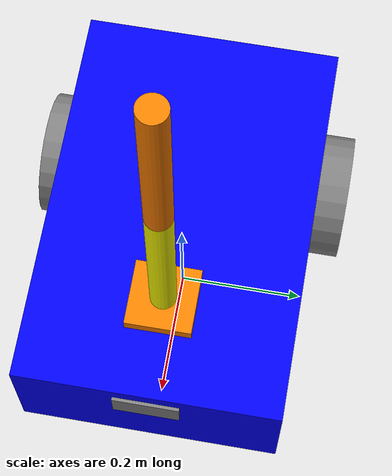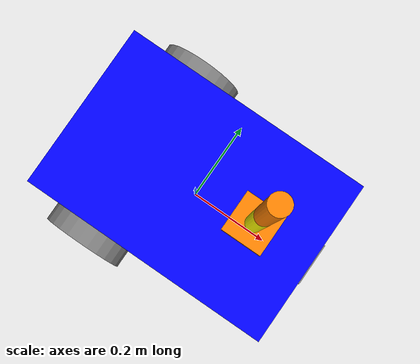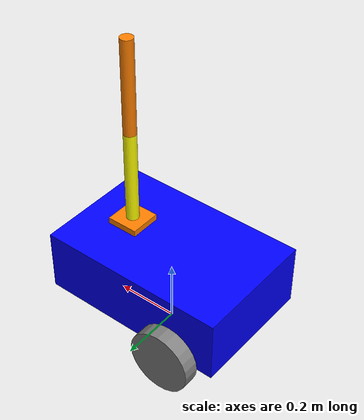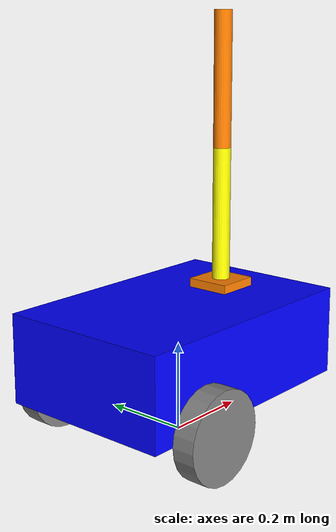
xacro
<?xml version="1.0"?>
<robot name="my_robot" xmlns:xacro="http://www.ros.org/wiki/xacro">

    <xacro:include filename="common_properties.xacro" />
    <xacro:include filename="mobile_base.xacro" />
    <xacro:include filename="mobile_base_gazebo.xacro" />
    <xacro:include filename="arm.xacro" />
    <xacro:include filename="arm_gazebo.xacro" />
    <xacro:include filename="camera.xacro" />

    <joint name="mobile_base_arm_joint" type="fixed">
    <parent link="base_link"/>
    <child link="arm_base_link"/>
    <origin xyz="${base_length/4} 0 ${base_hight}" rpy="0 0 0" />
    </joint>

</robot>

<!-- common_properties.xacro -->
<robot xmlns:xacro="http://www.ros.org/wiki/xacro">

    <material name="blue">
        <color rgba="0 0 1 1" />
    </material>

    <material name="grey">
        <color rgba="0.5 0.5 0.5 1" />
    </material>

    <material name="orange">
        <color rgba="1.0 0.5 0 1" />
    </material>

    <material name="yellow">
        <color rgba="1.0 1.0 0 1" />
    </material>

    <xacro:macro name="box_inertia" params ="m l w h xyz rpy">
        <inertial>
                <origin xyz= "${xyz}" rpy="${rpy}" />
                <mass value="${m}" />
                <inertia ixx="${(m/12)*(h*h+l*l)}" ixy="0" ixz="0"
                         iyy ="${(m/12) * (w*w + l*l)}" iyz="0"
                         izz="${(m/12) * (w*w + h*h)}" />
        </inertial>

    </xacro:macro>

    <xacro:macro name="cylinder_inertia" params ="m r h xyz rpy">
        <inertial>
                <origin xyz= "${xyz}" rpy="${rpy}" />
                <mass value="${m}" />
                <inertia ixx="${(m/12) * (3*r*r + h*h)}" ixy="0" ixz="0"
                         iyy ="${(m/12) * (3*r*r + h*h)}" iyz="0"
                         izz="${(m/2) * (r*r)}" />
        </inertial>
    </xacro:macro>

        <xacro:macro name="sphere_inertia" params ="m r xyz rpy">
        <inertial>
                <origin xyz= "${xyz}" rpy="${rpy}" />
                <mass value="${m}" />
                <inertia ixx="${(2/5)*m * (r*r)}" ixy="0" ixz="0"
                         iyy ="${(2/5)*m * (r*r)}" iyz="0"
                         izz="${(2/3)*m * (r*r)}" />
        </inertial>
    </xacro:macro>

</robot>

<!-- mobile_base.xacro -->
<robot xmlns:xacro="http://www.ros.org/wiki/xacro">

    <xacro:property name="base_length" value="0.6" />
    <xacro:property name="base_width" value="0.4" />
    <xacro:property name="base_hight" value="0.2" />
    <xacro:property name="wheel_radius" value="0.1" />
    <xacro:property name="wheel_length" value="0.05" />

    <link name="base_link">
        <visual>
            <geometry>
                <box size="${base_length} ${base_width} ${base_hight}"/>
            </geometry>
            <origin xyz="0 0 0.1" rpy="0 0 0"/>
            <material name="blue" />
        </visual>
        <collision>
            <geometry>
                <box size="${base_length} ${base_width} ${base_hight}"/>
            </geometry>
            <origin xyz="0 0 0.1" rpy="0 0 0"/>
        </collision>
        <xacro:box_inertia m="5.0" l="${base_length*2}" w="${base_width*2}" h="${base_hight*2}"
                           xyz="0 0 0.1" rpy="0 0 0" />
    </link>

    <link name="base_footprint"/>

    <link name="caster_wheel_link">
        <visual>
            <geometry>
                <sphere radius="0.05"/>
            </geometry>
        <origin xyz="0 0 0 " rpy="0 0 0"/>
        <material name="grey"/>
        </visual>
        <collision>
            <geometry>
                <sphere radius="0.05"/>
            </geometry>
        <origin xyz="0 0 0 " rpy="0 0 0"/>
        </collision>
        <xacro:sphere_inertia m="1.0" r="0.05" xyz="0 0 0" rpy="0 0 0" />
    </link>

    <xacro:macro name="wheel_link" params="prefix">
        <link name="${prefix}_wheel_link">
            <visual>
                <geometry>
                    <cylinder radius = "${wheel_radius}" length="${wheel_length}"/>
                </geometry>
                <origin xyz="0 0 0" rpy="${pi/2.0} 0 0" />
                <material name ="grey" />
            </visual>
            <collision>
                <geometry>
                    <cylinder radius = "${wheel_radius}" length="${wheel_length}"/>
                </geometry>
                <origin xyz="0 0 0" rpy="${pi/2.0} 0 0" />
            </collision>
            <xacro:cylinder_inertia m="1.0" r="${wheel_radius*2}" h="${wheel_length*2}"
                                    xyz="0 0 0" rpy="${pi/2.0} 0 0" />
        </link>
    </xacro:macro>

    <xacro:wheel_link prefix="right" />
    <xacro:wheel_link prefix="left" />

    <joint name="base_caster_wheel_joint" type="continuous">
        <parent link="base_link"/>
        <child link="caster_wheel_link"/>
        <origin xyz="${base_length/3.0} 0 -0.05" rpy="0 0 0"/>
        <axis xyz="0 1 0" />
    </joint>

    <joint name="base_right_wheel_joint" type="continuous">
        <parent link="base_link"/>
        <child link="right_wheel_link"/>
        <origin xyz="${-base_length/4} ${-base_width/2 - wheel_length/2} 0" rpy="0 0 0"/>
        <axis xyz="0 1 0"/>
    </joint>

    <joint name="base_left_wheel_joint" type="continuous">
        <parent link="base_link"/>
        <child link="left_wheel_link"/>
        <origin xyz="${-base_length/4} ${base_width/2 + wheel_length/2} 0" rpy="0 0 0"/>
        <axis xyz="0 1 0"/>
    </joint>

    <joint name="footprint_base_joint" type="fixed">
    <parent link="base_footprint"/>
    <child link="base_link"/>
    <origin xyz="0 0 0.1"/>
    </joint>

</robot>

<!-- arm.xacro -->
<robot xmlns:xacro="http://www.ros.org/wiki/xacro">

    <xacro:property name="arm_base_length" value="0.1" />
    <xacro:property name="arm_base_width" value="0.1" />
    <xacro:property name="arm_base_height" value="0.02" />
    <xacro:property name="forearm_radius" value="0.02" />
    <xacro:property name="forearm_length" value="0.3" />
    <xacro:property name="hand_radius" value="0.02" />

    <link name="arm_base_link">
        <visual>
            <geometry>
                <box size="${arm_base_length} ${arm_base_width} ${arm_base_height}" />
            </geometry>
            <origin xyz="0 0 ${arm_base_height/2}" rpy="0 0 0"/>
            <material name="orange" />
        </visual>
        <collision>
            <geometry>
                <box size="${arm_base_length} ${arm_base_width} ${arm_base_height}" />
            </geometry>
            <origin xyz="0 0 ${arm_base_height/2}" rpy="0 0 0"/>
        </collision>
        <xacro:box_inertia m="0.5" l="${2*arm_base_length}" w="${2*arm_base_width}" h="${2*arm_base_height}"
                            xyz="0 0 ${arm_base_height/2}" rpy="0 0 0" />
    </link>

    <link name="forearm_link">
        <visual>
            <geometry>
                <cylinder radius="${forearm_radius}" length="${forearm_length}"/>
            </geometry>
            <origin xyz="0 0 ${forearm_length/2}" rpy="0 0 0" />
            <material name="yellow" />
        </visual>
        <collision>
            <geometry>
                <cylinder radius="${forearm_radius}" length="${forearm_length}"/>
            </geometry>
            <origin xyz="0 0 ${forearm_length/2}" rpy="0 0 0" />
        </collision>
        <xacro:cylinder_inertia m="0.3" r="${2*forearm_radius}" h="${2*forearm_length}"
                                 xyz="0 0 ${forearm_length/2}" rpy="0 0 0" />
    </link>

    <link name="hand_link">
        <visual>
            <geometry>
                <cylinder radius="${forearm_radius}" length="${forearm_length}"/>
            </geometry>
            <origin xyz="0 0 ${forearm_length/2}" rpy="0 0 0" />
            <material name="orange" />
        </visual>
        <collision>
            <geometry>
                <cylinder radius="${forearm_radius}" length="${forearm_length}"/>
            </geometry>
            <origin xyz="0 0 ${forearm_length/2}" rpy="0 0 0" />
        </collision>
        <xacro:cylinder_inertia m="0.3" r="${2*forearm_radius}" h="${2*forearm_length}"
                                 xyz="0 0 ${forearm_length/2}" rpy="0 0 0" />
    </link>

    <joint name="arm_base_forearm_joint" type="revolute">
        <parent link="arm_base_link"/>
        <child link="forearm_link"/>
        <origin xyz="0 0 ${arm_base_height}" rpy="0 0 0" />
        <axis xyz="0.0 1.0 0.0"/>
        <limit lower="0.0" upper="${pi/2.0}" effort="100" velocity="100"/>
        <dynamics friction="0.9" damping="0.1" />
    </joint>

    <joint name="forearm_hand_joint" type="revolute">
        <parent link="forearm_link"/>
        <child link="hand_link"/>
        <origin xyz="0 0 ${forearm_length}" rpy="0 0 0" />
        <axis xyz="0.0 1.0 0.0"/>
        <limit lower="0.0" upper="${pi/2.0}" effort="100" velocity="100"/>
        <dynamics friction="0.05" damping="0.1" />
    </joint>
</robot>

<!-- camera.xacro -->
<robot xmlns:xacro="http://www.ros.org/wiki/xacro">
    <xacro:property name="camera_length" value ="0.01" />
    <xacro:property name="camera_width" value ="0.1" />
    <xacro:property name="camera_hight" value ="0.05" />

    <link name="camera_link">
        <visual>
            <geometry>
                <box size="${camera_length} ${camera_width} ${camera_hight}" />
                <origin xyz="0.005 0 0" />
            </geometry>
            <material name="grey" />
        </visual>
        <collision>
            <geometry>
                <box size="${camera_length} ${camera_width} ${camera_hight}" />
                <origin xyz="0.005 0 0" />
            </geometry>
        </collision>
        <xacro:box_inertia m="0.1" l="${camera_length}" w="${camera_width}" h="${camera_hight}"
                        xyz ="0 0 0" rpy= "0 0 0" />
    </link>

    <joint name="base_camera_joint" type="fixed">
        <parent link="base_link" />
        <child link="camera_link"/>
        <origin xyz="0.3 0 0.15" rpy="0 0 0" />
    </joint>

<gazebo reference="camera_link">
    <material>Gazebo/Red</material>
    <sensor name="camera_sensor" type="camera">
        <pose>0 0 0 0 0 0</pose>
        <visualize>true</visualize>
        <update_rate>10.0</update_rate>
        <plugin name="camera_controller" filename="libgazebo_ros_camera.so">
            <frame_name>camera_link</frame_name>
        </plugin>
    </sensor>
</gazebo>

</robot>
